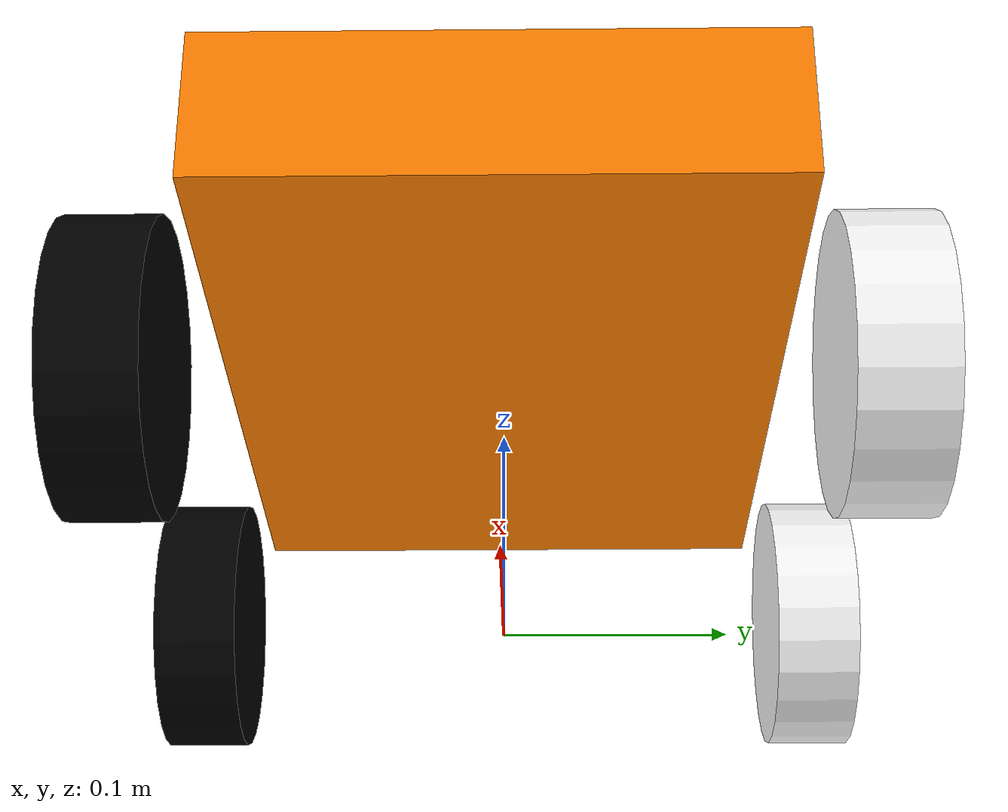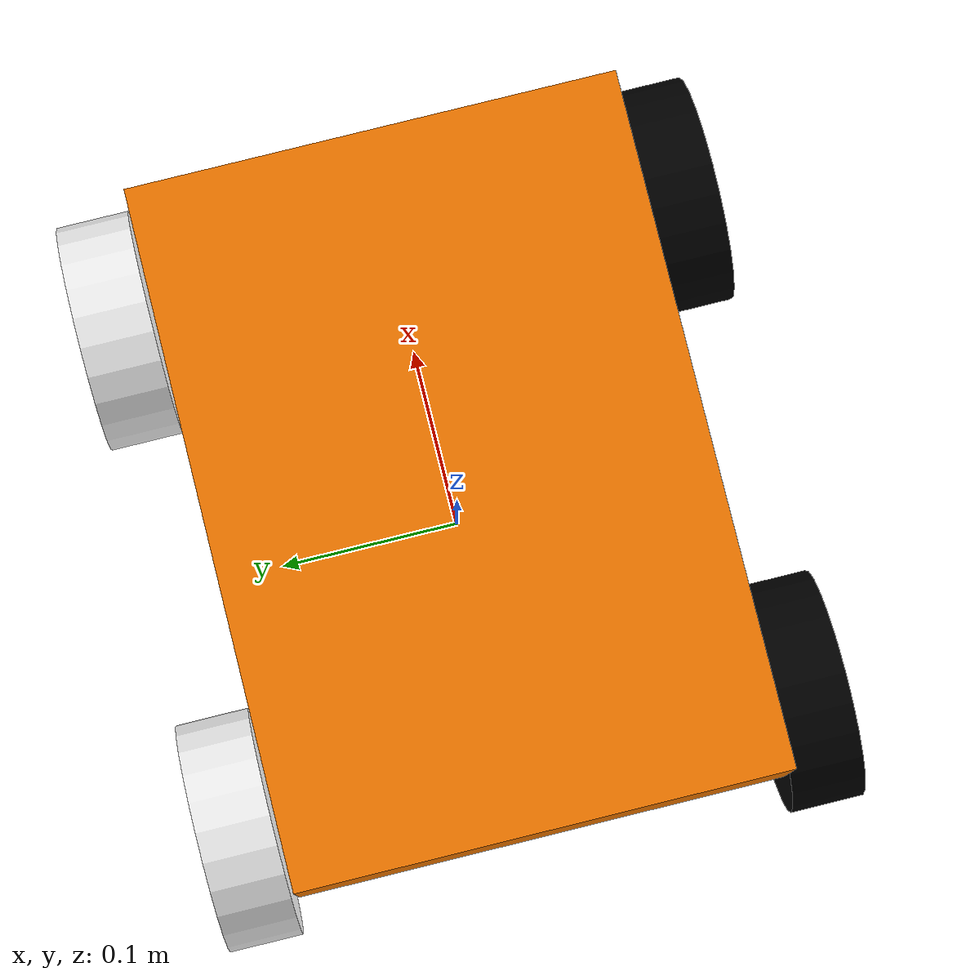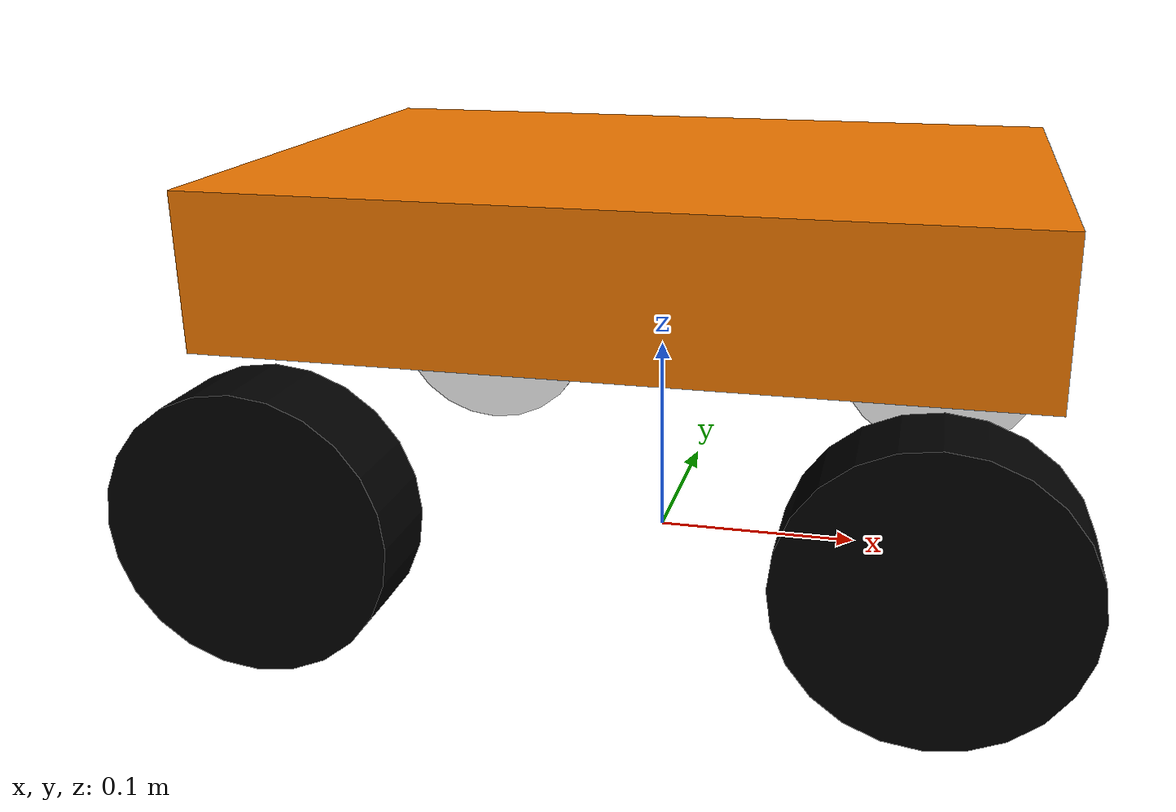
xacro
<?xml version="1.0"?>
<robot name="shaastra_rover" xmlns:xacro="http://www.ros.org/wiki/xacro">

  <xacro:include filename="rover_base.xacro" />
  <xacro:include filename="rover.ros2_control.xacro" />

  <gazebo>
    <plugin name="gazebo_ros2_control" filename="libgazebo_ros2_control.so">
      <parameters>/home/monith/test_rover/src/rover_control/config/controllers.yaml</parameters>
    </plugin>
  </gazebo>
  <gazebo reference="imu_link">
    <sensor name="imu_sensor" type="imu">
      <always_on>true</always_on>
      <update_rate>100</update_rate>
      <plugin name="imu_plugin" filename="libgazebo_ros_imu_sensor.so">
        <ros>
          <remapping>~/out:=/imu/data</remapping>
        </ros>
        <initial_orientation_as_reference>false</initial_orientation_as_reference>
      </plugin>
      <imu>
        <angular_velocity>
          <x><noise type="gaussian"><mean>0.0</mean><stddev>0.005</stddev></noise></x>
          <y><noise type="gaussian"><mean>0.0</mean><stddev>0.005</stddev></noise></y>
          <z><noise type="gaussian"><mean>0.0</mean><stddev>0.005</stddev></noise></z>
        </angular_velocity>
        <linear_acceleration>
          <x><noise type="gaussian"><mean>0.0</mean><stddev>0.05</stddev></noise></x>
          <y><noise type="gaussian"><mean>0.0</mean><stddev>0.05</stddev></noise></y>
          <z><noise type="gaussian"><mean>0.0</mean><stddev>0.05</stddev></noise></z>
        </linear_acceleration>
      </imu>
    </sensor>
  </gazebo>
</robot>

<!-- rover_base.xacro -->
<robot xmlns:xacro="http://www.ros.org/wiki/xacro">

  <material name="black">
    <color rgba="0.0 0.0 0.0 1.0"/>
  </material>

  <material name="white">
    <color rgba="1.0 1.0 1.0 1.0"/>
  </material>

  <material name="orange">
    <color rgba="1.0 0.5 0.0 1.0"/>
  </material>

  <link name="base_footprint" />
  <link name="base_link">
    <visual>
      <geometry><box size="0.37 0.26 0.072"/></geometry>
      <material name="orange"></material>
    </visual>
    <collision>
      <geometry><box size="0.37 0.26 0.072"/></geometry>
    </collision>
    <inertial>
      <mass value="3.0"/>
      <inertia ixx="0.0182" ixy="0.0" ixz="0.0"
                             iyy="0.0355" iyz="0.0"
                                          izz="0.0511"/>
    </inertial>
  </link>
  <gazebo reference="base_link">
    <material>Gazebo/Orange</material>
  </gazebo>

  <joint name="base_footprint_joint" type="fixed">
    <parent link="base_footprint" />
    <child link="base_link" />
    <origin xyz="0 0 0.16" rpy="0 0 0" />
  </joint>

  <!-- FRONT LEFT WHEEL -->
  <link name="front_left_wheel">
    <visual>
      <origin xyz="0 0 0" rpy="${pi / 2.0} 0 0"/>
      <geometry><cylinder length="0.04" radius="0.0625"/></geometry>
      <material name="white"/>
    </visual>
    <collision>
      <origin xyz="0 0 0" rpy="${pi / 2.0} 0 0"/>
      <geometry><cylinder length="0.04" radius="0.0625"/></geometry>
    </collision>
    <inertial>
      <mass value="0.1"/>
      <inertia ixx="0.000111" ixy="0.0" ixz="0.0"
                               iyy="0.000195" iyz="0.0"
                                              izz="0.000111"/>
    </inertial>
  </link>
  <joint name="fl_joint" type="continuous">
    <parent link="base_link"/>
    <child link="front_left_wheel"/>
    <origin xyz="0.14 0.155 -0.0985" rpy="0 0 0"/>
    <axis xyz="0 1 0"/>
    <limit effort="10.0" velocity="10.0"/>
    <dynamics damping="0.05" friction="0.05"/>
  </joint>

  <!-- FRONT RIGHT WHEEL -->
  <link name="front_right_wheel">
    <visual>
      <origin xyz="0 0 0" rpy="${pi / 2.0} 0 0"/>
      <geometry><cylinder length="0.04" radius="0.0625"/></geometry>
      <material name="black"/>
    </visual>
    <collision>
      <origin xyz="0 0 0" rpy="${pi / 2.0} 0 0"/>
      <geometry><cylinder length="0.04" radius="0.0625"/></geometry>
    </collision>
    <inertial>
      <mass value="0.1"/>
      <inertia ixx="0.000111" ixy="0.0" ixz="0.0"
                               iyy="0.000195" iyz="0.0"
                                              izz="0.000111"/>
    </inertial>
  </link>
  <joint name="fr_joint" type="continuous">
    <parent link="base_link"/>
    <child link="front_right_wheel"/>
    <origin xyz="0.14 -0.155 -0.0985" rpy="0 0 0"/>
    <axis xyz="0 1 0"/>
    <limit effort="10.0" velocity="10.0"/>
    <dynamics damping="0.05" friction="0.05"/>
  </joint>

  <!-- REAR LEFT WHEEL -->
  <link name="rear_left_wheel">
    <visual>
      <origin xyz="0 0 0" rpy="${pi / 2.0} 0 0"/>
      <geometry><cylinder length="0.04" radius="0.0625"/></geometry>
      <material name="white"/>
    </visual>
    <collision>
      <origin xyz="0 0 0" rpy="${pi / 2.0} 0 0"/>
      <geometry><cylinder length="0.04" radius="0.0625"/></geometry>
    </collision>
    <inertial>
      <mass value="0.1"/>
      <inertia ixx="0.000111" ixy="0.0" ixz="0.0"
                               iyy="0.000195" iyz="0.0"
                                              izz="0.000111"/>
    </inertial>
  </link>
  <joint name="rl_joint" type="continuous">
    <parent link="base_link"/>
    <child link="rear_left_wheel"/>
    <origin xyz="-0.14 0.155 -0.0985" rpy="0 0 0"/>
    <axis xyz="0 1 0"/>
    <limit effort="10.0" velocity="10.0"/>
    <dynamics damping="0.05" friction="0.05"/>
  </joint>

  <!-- REAR RIGHT WHEEL -->
  <link name="rear_right_wheel">
    <visual>
      <origin xyz="0 0 0" rpy="${pi / 2.0} 0 0"/>
      <geometry><cylinder length="0.04" radius="0.0625"/></geometry>
      <material name="black"/>
    </visual>
    <collision>
      <origin xyz="0 0 0" rpy="${pi / 2.0} 0 0"/>
      <geometry><cylinder length="0.04" radius="0.0625"/></geometry>
    </collision>
    <inertial>
      <mass value="0.1"/>
      <inertia ixx="0.000111" ixy="0.0" ixz="0.0"
                               iyy="0.000195" iyz="0.0"
                                              izz="0.000111"/>
    </inertial>
  </link>
  <joint name="rr_joint" type="continuous">
    <parent link="base_link"/>
    <child link="rear_right_wheel"/>
    <origin xyz="-0.14 -0.155 -0.0985" rpy="0 0 0"/>
    <axis xyz="0 1 0"/>
    <limit effort="10.0" velocity="10.0"/>
    <dynamics damping="0.05" friction="0.05"/>
  </joint>

  <!-- IMU link -->
  <link name="imu_link">
    <inertial>
      <mass value="0.01"/>
      <inertia ixx="1e-6" ixy="0" ixz="0" iyy="1e-6" iyz="0" izz="1e-6"/>
    </inertial>
  </link>

  <!-- Fixed to base_link at center -->
  <joint name="imu_joint" type="fixed">
    <parent link="base_link"/>
    <child link="imu_link"/>
    <origin xyz="0 0 0" rpy="0 0 0"/>
  </joint>

  <!-- Contact surface physics -->
  <gazebo reference="front_left_wheel">
    <material>Gazebo/White</material>
    <mu1>1.5</mu1>
    <mu2>0.4</mu2>
    <kp>1e8</kp>
    <kd>1.0</kd>
    <minDepth>0.01</minDepth>
    <maxVel>0.01</maxVel>
    <fdir1>1 0 0</fdir1>
    <implicitSpringDamper>true</implicitSpringDamper>
</gazebo>

  <gazebo reference="front_right_wheel">
    <material>Gazebo/Black</material>
    <mu1>1.5</mu1>
    <mu2>0.4</mu2>
    <kp>1e8</kp>
    <kd>1.0</kd>
    <minDepth>0.01</minDepth>
    <maxVel>0.01</maxVel>
    <fdir1>1 0 0</fdir1>
    <implicitSpringDamper>true</implicitSpringDamper>
</gazebo>

  <gazebo reference="rear_left_wheel">
    <material>Gazebo/White</material>
    <mu1>1.5</mu1>
    <mu2>0.4</mu2>
    <kp>1e8</kp>
    <kd>1.0</kd>
    <minDepth>0.01</minDepth>
    <maxVel>0.01</maxVel>
    <fdir1>1 0 0</fdir1>
    <implicitSpringDamper>true</implicitSpringDamper>
</gazebo>

  <gazebo reference="rear_right_wheel">
    <material>Gazebo/Black</material>
    <mu1>1.5</mu1>
    <mu2>0.4</mu2>
    <kp>1e8</kp>
    <kd>1.0</kd>
    <minDepth>0.01</minDepth>
    <maxVel>0.01</maxVel>
    <fdir1>1 0 0</fdir1>
    <implicitSpringDamper>true</implicitSpringDamper>
</gazebo>

</robot>
